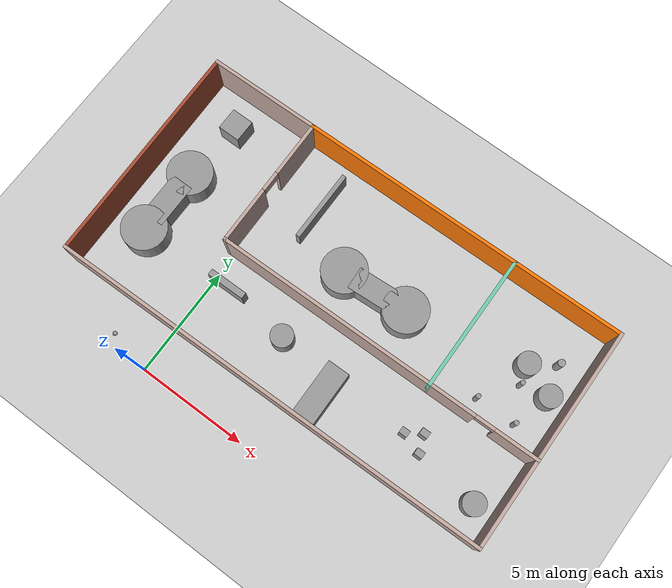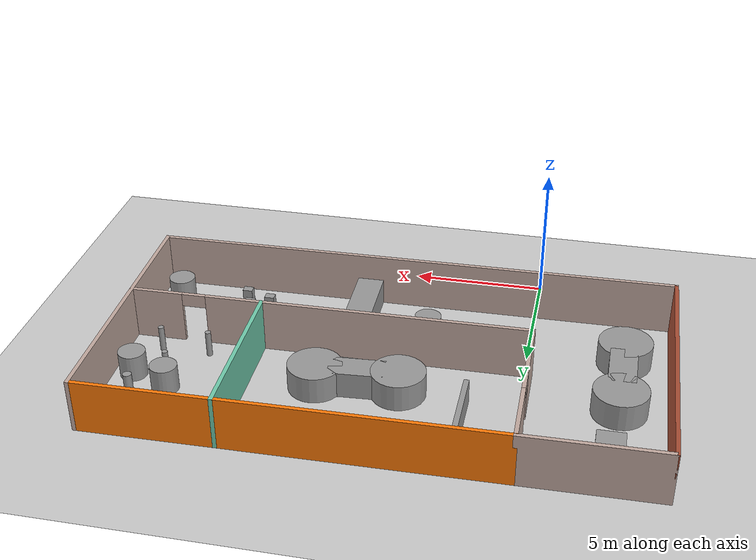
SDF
<sdf version="1.6">
 <world name="default">
  <plugin name="hello" filename="libhello.so"/>
  <light name="sun" type="directional">
   <pose>0 0 10 0 -0 0</pose>
   <diffuse>0.8 0.8 0.8 1</diffuse>
   <specular>0.2 0.2 0.2 1</specular>
   <attenuation>
    <range>1000</range>
    <constant>0.9</constant>
    <linear>0.01</linear>
    <quadratic>0.001</quadratic>
   </attenuation>
   <direction>-0.5 0.1 -0.9</direction>
  </light>
  <model name="ground_plane">
   <static>1</static>
   <link name="link">
    <collision name="collision">
     <geometry><plane><normal>0 0 1</normal><size>100 100</size></plane></geometry>
     <surface>
      <contact><collide_bitmask>65535</collide_bitmask></contact>
      <friction><ode><mu>100</mu><mu2>50</mu2></ode></friction>
     </surface>
    </collision>
    <visual name="visual">
     <cast_shadows>0</cast_shadows>
     <geometry><plane><normal>0 0 1</normal><size>100 100</size></plane></geometry>
     <material>
      <script><uri>file://media/materials/scripts/gazebo.material</uri><name>Gazebo/Grey</name></script>
     </material>
    </visual>
   </link>
  </model>
  <gravity>0 0 -9.8</gravity>
  <magnetic_field>6e-06 2.3e-05 -4.2e-05</magnetic_field>
  <atmosphere type="adiabatic"/>
  <physics name="default_physics" default="0" type="ode">
   <max_step_size>0.001</max_step_size>
   <real_time_factor>1</real_time_factor>
   <real_time_update_rate>1000</real_time_update_rate>
  </physics>
  <scene><ambient>0.4 0.4 0.4 1</ambient><background>0.7 0.7 0.7 1</background><shadows>1</shadows></scene>
  <spherical_coordinates>
   <surface_model>EARTH_WGS84</surface_model>
   <latitude_deg>0</latitude_deg>
   <longitude_deg>0</longitude_deg>
   <elevation>0</elevation>
   <heading_deg>0</heading_deg>
  </spherical_coordinates>
  <model name="house">
   <pose>4.73827 7.12037 -0.500011 0 -0 0.014937</pose>
   <link name="Wall_0">
    <collision name="Wall_0_Collision">
     <geometry><box><size>10.15 0.15 2.5</size></box></geometry>
     <pose>0 0 1.25 0 -0 0</pose>
    </collision>
    <visual name="Wall_0_Visual">
     <pose>0 0 1.25 0 -0 0</pose>
     <geometry><box><size>10.15 0.15 2.5</size></box></geometry>
     <material>
      <script><uri>file://media/materials/scripts/gazebo.material</uri><name>Gazebo/Bricks</name></script>
      <ambient>0.760784 0.662745 0.627451 1</ambient>
     </material>
     <meta><layer>0</layer></meta>
    </visual>
    <pose>-10 0 0 0 -0 1.5708</pose>
   </link>
   <link name="Wall_11">
    <collision name="Wall_11_Collision">
     <geometry><box><size>15 0.15 2.5</size></box></geometry>
     <pose>0 0 1.25 0 -0 0</pose>
    </collision>
    <visual name="Wall_11_Visual">
     <pose>0 0 1.25 0 -0 0</pose>
     <geometry><box><size>15 0.15 2.5</size></box></geometry>
     <material>
      <script><uri>file://media/materials/scripts/gazebo.material</uri><name>Gazebo/Grey</name></script>
      <ambient>0.996078 0.47451 0.0196078 1</ambient>
     </material>
     <meta><layer>0</layer></meta>
    </visual>
    <pose>2.425 5 0 0 -0 0</pose>
   </link>
   <link name="Wall_13">
    <collision name="Wall_13_Collision">
     <geometry><box><size>5.15 0.15 2.5</size></box></geometry>
     <pose>0 0 1.25 0 -0 0</pose>
    </collision>
    <visual name="Wall_13_Visual">
     <pose>0 0 1.25 0 -0 0</pose>
     <geometry><box><size>5.15 0.15 2.5</size></box></geometry>
     <material>
      <script><uri>file://media/materials/scripts/gazebo.material</uri><name>Gazebo/Grey</name></script>
      <ambient>0.760784 0.662745 0.627451 1</ambient>
     </material>
     <meta><layer>0</layer></meta>
    </visual>
    <pose>-7.5 5 0 0 -0 0</pose>
   </link>
   <link name="Wall_15">
    <collision name="Wall_15_Collision">
     <geometry><box><size>6.15 0.15 2.5</size></box></geometry>
     <pose>0 0 1.25 0 -0 0</pose>
    </collision>
    <visual name="Wall_15_Visual">
     <pose>0 0 1.25 0 -0 0</pose>
     <geometry><box><size>6.15 0.15 2.5</size></box></geometry>
     <material>
      <script><uri>file://media/materials/scripts/gazebo.material</uri><name>Gazebo/Grey</name></script>
      <ambient>0.435294 0.796078 0.67451 1</ambient>
     </material>
     <meta><layer>0</layer></meta>
    </visual>
    <pose>5 2 0 0 0 -1.5708</pose>
   </link>
   <link name="Wall_2">
    <collision name="Wall_2_Collision">
     <geometry><box><size>20.15 0.15 2.5</size></box></geometry>
     <pose>0 0 1.25 0 -0 0</pose>
    </collision>
    <visual name="Wall_2_Visual">
     <pose>0 0 1.25 0 -0 0</pose>
     <geometry><box><size>20.15 0.15 2.5</size></box></geometry>
     <material>
      <script><uri>file://media/materials/scripts/gazebo.material</uri><name>Gazebo/Grey</name></script>
      <ambient>0.760784 0.662745 0.627451 1</ambient>
     </material>
     <meta><layer>0</layer></meta>
    </visual>
    <pose>0 -5 0 0 -0 0</pose>
   </link>
   <link name="Wall_4">
    <collision name="Wall_4_Collision">
     <geometry><box><size>10.15 0.15 2.5</size></box></geometry>
     <pose>0 0 1.25 0 -0 0</pose>
    </collision>
    <visual name="Wall_4_Visual">
     <pose>0 0 1.25 0 -0 0</pose>
     <geometry><box><size>10.15 0.15 2.5</size></box></geometry>
     <material>
      <script><uri>file://media/materials/scripts/gazebo.material</uri><name>Gazebo/Grey</name></script>
      <ambient>0.760784 0.662745 0.627451 1</ambient>
     </material>
     <meta><layer>0</layer></meta>
    </visual>
    <pose>10 0 0 0 -0 1.5708</pose>
   </link>
   <link name="Wall_6">
    <pose>2.5 -1 0 0 -0 0</pose>
    <visual name="Wall_6_Visual_0">
     <pose>-1.47053 0 1.25 0 -0 0</pose>
     <geometry><box><size>12.2089 0.15 2.5</size></box></geometry>
     <material>
      <script><uri>file://media/materials/scripts/gazebo.material</uri><name>Gazebo/Grey</name></script>
      <ambient>0.760784 0.662745 0.627451 1</ambient>
     </material>
     <meta><layer>0</layer></meta>
    </visual>
    <collision name="Wall_6_Collision_0">
     <geometry><box><size>12.2089 0.15 2.5</size></box></geometry>
     <pose>-1.47053 0 1.25 0 -0 0</pose>
    </collision>
    <visual name="Wall_6_Visual_1">
     <pose>6.55447 0 1.25 0 -0 0</pose>
     <geometry><box><size>2.04107 0.15 2.5</size></box></geometry>
     <material>
      <script><uri>file://media/materials/scripts/gazebo.material</uri><name>Gazebo/Grey</name></script>
      <ambient>0.760784 0.662745 0.627451 1</ambient>
     </material>
     <meta><layer>0</layer></meta>
    </visual>
    <collision name="Wall_6_Collision_1">
     <geometry><box><size>2.04107 0.15 2.5</size></box></geometry>
     <pose>6.55447 0 1.25 0 -0 0</pose>
    </collision>
    <visual name="Wall_6_Visual_2">
     <pose>5.08393 0 2.25 0 -0 0</pose>
     <geometry><box><size>0.9 0.15 0.5</size></box></geometry>
     <material>
      <script><uri>file://media/materials/scripts/gazebo.material</uri><name>Gazebo/Grey</name></script>
      <ambient>0.760784 0.662745 0.627451 1</ambient>
     </material>
     <meta><layer>0</layer></meta>
    </visual>
    <collision name="Wall_6_Collision_2">
     <geometry><box><size>0.9 0.15 0.5</size></box></geometry>
     <pose>5.08393 0 2.25 0 -0 0</pose>
    </collision>
   </link>
   <link name="Wall_8">
    <pose>-5 2 0 0 -0 1.5708</pose>
    <visual name="Wall_8_Visual_0">
     <pose>-1.7494 0 1.25 0 -0 0</pose>
     <geometry><box><size>2.65121 0.15 2.5</size></box></geometry>
     <material>
      <script><uri>file://media/materials/scripts/gazebo.material</uri><name>Gazebo/Grey</name></script>
      <ambient>0.760784 0.662745 0.627451 1</ambient>
     </material>
     <meta><layer>0</layer></meta>
    </visual>
    <collision name="Wall_8_Collision_0">
     <geometry><box><size>2.65121 0.15 2.5</size></box></geometry>
     <pose>-1.7494 0 1.25 0 -0 0</pose>
    </collision>
    <visual name="Wall_8_Visual_1">
     <pose>1.7756 0 1.25 0 -0 0</pose>
     <geometry><box><size>2.59879 0.15 2.5</size></box></geometry>
     <material>
      <script><uri>file://media/materials/scripts/gazebo.material</uri><name>Gazebo/Grey</name></script>
      <ambient>0.760784 0.662745 0.627451 1</ambient>
     </material>
     <meta><layer>0</layer></meta>
    </visual>
    <collision name="Wall_8_Collision_1">
     <geometry><box><size>2.59879 0.15 2.5</size></box></geometry>
     <pose>1.7756 0 1.25 0 -0 0</pose>
    </collision>
    <visual name="Wall_8_Visual_2">
     <pose>0.026206 0 2.25 0 -0 0</pose>
     <geometry><box><size>0.9 0.15 0.5</size></box></geometry>
     <material>
      <script><uri>file://media/materials/scripts/gazebo.material</uri><name>Gazebo/Grey</name></script>
      <ambient>0.760784 0.662745 0.627451 1</ambient>
     </material>
     <meta><layer>0</layer></meta>
    </visual>
    <collision name="Wall_8_Collision_2">
     <geometry><box><size>0.9 0.15 0.5</size></box></geometry>
     <pose>0.026206 0 2.25 0 -0 0</pose>
    </collision>
   </link>
   <static>1</static>
  </model>
  <model name="dogboneTable">
   <link name="link_0">
    <pose>0.0299 2.5 0 0 -0 0</pose>
    <inertial>
     <mass>1</mass>
     <inertia><ixx>0.145833</ixx><ixy>0</ixy><ixz>0</ixz><iyy>0.145833</iyy><iyz>0</iyz><izz>0.125</izz></inertia>
    </inertial>
    <visual name="visual">
     <geometry><cylinder><radius>1</radius><length>1</length></cylinder></geometry>
     <material>
      <lighting>1</lighting>
      <script><uri>file://media/materials/scripts/gazebo.material</uri><name>Gazebo/Grey</name></script>
      <shader type="pixel"><normal_map>__default__</normal_map></shader>
      <ambient>0.3 0.3 0.3 1</ambient>
      <diffuse>0.7 0.7 0.7 1</diffuse>
      <specular>0.01 0.01 0.01 1</specular>
      <emissive>0 0 0 1</emissive>
     </material>
    </visual>
    <collision name="collision">
     <geometry><cylinder><radius>1</radius><length>1</length></cylinder></geometry>
     <surface>
      <friction>
       <ode><mu>1</mu><mu2>1</mu2><fdir1>0 0 0</fdir1><slip1>0</slip1><slip2>0</slip2></ode>
       <torsional>
        <coefficient>1</coefficient>
        <patch_radius>0</patch_radius>
        <surface_radius>0</surface_radius>
        <use_patch_radius>1</use_patch_radius>
        <ode><slip>0</slip></ode>
       </torsional>
      </friction>
      <bounce><restitution_coefficient>0</restitution_coefficient><threshold>1e+06</threshold></bounce>
      <contact>
       <collide_without_contact>0</collide_without_contact>
       <collide_without_contact_bitmask>1</collide_without_contact_bitmask>
       <collide_bitmask>1</collide_bitmask>
       <ode>
        <soft_cfm>0</soft_cfm>
        <soft_erp>0.2</soft_erp>
        <kp>1e+13</kp>
        <kd>1</kd>
        <max_vel>0.01</max_vel>
        <min_depth>0</min_depth>
       </ode>
       <bullet>
        <split_impulse>1</split_impulse>
        <split_impulse_penetration_threshold>-0.01</split_impulse_penetration_threshold>
        <soft_cfm>0</soft_cfm>
        <soft_erp>0.2</soft_erp>
        <kp>1e+13</kp>
        <kd>1</kd>
       </bullet>
      </contact>
     </surface>
    </collision>
   </link>
   <link name="link_0_clone">
    <pose>0 -0.5 0 0 -0 0</pose>
    <inertial>
     <mass>1</mass>
     <inertia><ixx>0.145833</ixx><ixy>0</ixy><ixz>0</ixz><iyy>0.145833</iyy><iyz>0</iyz><izz>0.125</izz></inertia>
    </inertial>
    <visual name="visual">
     <geometry><cylinder><radius>1</radius><length>1</length></cylinder></geometry>
     <material>
      <lighting>1</lighting>
      <script><uri>file://media/materials/scripts/gazebo.material</uri><name>Gazebo/Grey</name></script>
      <shader type="pixel"><normal_map>__default__</normal_map></shader>
      <ambient>0.3 0.3 0.3 1</ambient>
      <diffuse>0.7 0.7 0.7 1</diffuse>
      <specular>0.01 0.01 0.01 1</specular>
      <emissive>0 0 0 1</emissive>
     </material>
    </visual>
    <collision name="collision">
     <geometry><cylinder><radius>1</radius><length>1</length></cylinder></geometry>
     <surface>
      <friction>
       <ode><mu>1</mu><mu2>1</mu2><fdir1>0 0 0</fdir1><slip1>0</slip1><slip2>0</slip2></ode>
       <torsional>
        <coefficient>1</coefficient>
        <patch_radius>0</patch_radius>
        <surface_radius>0</surface_radius>
        <use_patch_radius>1</use_patch_radius>
        <ode><slip>0</slip></ode>
       </torsional>
      </friction>
      <bounce><restitution_coefficient>0</restitution_coefficient><threshold>1e+06</threshold></bounce>
      <contact>
       <collide_without_contact>0</collide_without_contact>
       <collide_without_contact_bitmask>1</collide_without_contact_bitmask>
       <collide_bitmask>1</collide_bitmask>
       <ode>
        <soft_cfm>0</soft_cfm>
        <soft_erp>0.2</soft_erp>
        <kp>1e+13</kp>
        <kd>1</kd>
        <max_vel>0.01</max_vel>
        <min_depth>0</min_depth>
       </ode>
       <bullet>
        <split_impulse>1</split_impulse>
        <split_impulse_penetration_threshold>-0.01</split_impulse_penetration_threshold>
        <soft_cfm>0</soft_cfm>
        <soft_erp>0.2</soft_erp>
        <kp>1e+13</kp>
        <kd>1</kd>
       </bullet>
      </contact>
     </surface>
    </collision>
   </link>
   <link name="link_1">
    <pose>0.0299 1 0 0 -0 0</pose>
    <inertial>
     <mass>1</mass>
     <inertia>
      <ixx>0.166667</ixx>
      <ixy>0</ixy>
      <ixz>0</ixz>
      <iyy>0.166667</iyy>
      <iyz>0</iyz>
      <izz>0.166667</izz>
     </inertia>
    </inertial>
    <visual name="visual">
     <geometry><box><size>1 2 1</size></box></geometry>
     <material>
      <lighting>1</lighting>
      <script><uri>file://media/materials/scripts/gazebo.material</uri><name>Gazebo/Grey</name></script>
      <shader type="pixel"><normal_map>__default__</normal_map></shader>
      <ambient>0.3 0.3 0.3 1</ambient>
      <diffuse>0.7 0.7 0.7 1</diffuse>
      <specular>0.01 0.01 0.01 1</specular>
      <emissive>0 0 0 1</emissive>
     </material>
    </visual>
    <collision name="collision">
     <geometry><box><size>1 2 1</size></box></geometry>
     <surface>
      <friction>
       <ode><mu>1</mu><mu2>1</mu2><fdir1>0 0 0</fdir1><slip1>0</slip1><slip2>0</slip2></ode>
       <torsional>
        <coefficient>1</coefficient>
        <patch_radius>0</patch_radius>
        <surface_radius>0</surface_radius>
        <use_patch_radius>1</use_patch_radius>
        <ode><slip>0</slip></ode>
       </torsional>
      </friction>
      <bounce><restitution_coefficient>0</restitution_coefficient><threshold>1e+06</threshold></bounce>
      <contact>
       <collide_without_contact>0</collide_without_contact>
       <collide_without_contact_bitmask>1</collide_without_contact_bitmask>
       <collide_bitmask>1</collide_bitmask>
       <ode>
        <soft_cfm>0</soft_cfm>
        <soft_erp>0.2</soft_erp>
        <kp>1e+13</kp>
        <kd>1</kd>
        <max_vel>0.01</max_vel>
        <min_depth>0</min_depth>
       </ode>
       <bullet>
        <split_impulse>1</split_impulse>
        <split_impulse_penetration_threshold>-0.01</split_impulse_penetration_threshold>
        <soft_cfm>0</soft_cfm>
        <soft_erp>0.2</soft_erp>
        <kp>1e+13</kp>
        <kd>1</kd>
       </bullet>
      </contact>
     </surface>
    </collision>
   </link>
   <joint name="link_1_JOINT_0" type="fixed">
    <parent>link_1</parent>
    <child>link_0</child>
    <physics>
     <ode><limit><cfm>0</cfm><erp>0.2</erp></limit><suspension><cfm>0</cfm><erp>0.2</erp></suspension></ode>
    </physics>
   </joint>
   <joint name="link_1_JOINT_1" type="fixed">
    <parent>link_0</parent>
    <child>link_0_clone</child>
    <physics>
     <ode><limit><cfm>0</cfm><erp>0.2</erp></limit><suspension><cfm>0</cfm><erp>0.2</erp></suspension></ode>
    </physics>
   </joint>
   <static>0</static>
   <pose>-3.53305 5.10041 0.499999 1e-06 -1e-06 0.004234</pose>
  </model>
  <model name="dogboneTable_clone">
   <link name="link_0">
    <pose>0.0299 2.5 0 0 -0 0</pose>
    <inertial>
     <mass>1</mass>
     <inertia><ixx>0.145833</ixx><ixy>0</ixy><ixz>0</ixz><iyy>0.145833</iyy><iyz>0</iyz><izz>0.125</izz></inertia>
    </inertial>
    <visual name="visual">
     <geometry><cylinder><radius>1</radius><length>1</length></cylinder></geometry>
     <material>
      <lighting>1</lighting>
      <script><uri>file://media/materials/scripts/gazebo.material</uri><name>Gazebo/Grey</name></script>
      <shader type="pixel"><normal_map>__default__</normal_map></shader>
      <ambient>0.3 0.3 0.3 1</ambient>
      <diffuse>0.7 0.7 0.7 1</diffuse>
      <specular>0.01 0.01 0.01 1</specular>
      <emissive>0 0 0 1</emissive>
     </material>
    </visual>
    <collision name="collision">
     <geometry><cylinder><radius>1</radius><length>1</length></cylinder></geometry>
     <surface>
      <friction>
       <ode><mu>1</mu><mu2>1</mu2><fdir1>0 0 0</fdir1><slip1>0</slip1><slip2>0</slip2></ode>
       <torsional>
        <coefficient>1</coefficient>
        <patch_radius>0</patch_radius>
        <surface_radius>0</surface_radius>
        <use_patch_radius>1</use_patch_radius>
        <ode><slip>0</slip></ode>
       </torsional>
      </friction>
      <bounce><restitution_coefficient>0</restitution_coefficient><threshold>1e+06</threshold></bounce>
      <contact>
       <collide_without_contact>0</collide_without_contact>
       <collide_without_contact_bitmask>1</collide_without_contact_bitmask>
       <collide_bitmask>1</collide_bitmask>
       <ode>
        <soft_cfm>0</soft_cfm>
        <soft_erp>0.2</soft_erp>
        <kp>1e+13</kp>
        <kd>1</kd>
        <max_vel>0.01</max_vel>
        <min_depth>0</min_depth>
       </ode>
       <bullet>
        <split_impulse>1</split_impulse>
        <split_impulse_penetration_threshold>-0.01</split_impulse_penetration_threshold>
        <soft_cfm>0</soft_cfm>
        <soft_erp>0.2</soft_erp>
        <kp>1e+13</kp>
        <kd>1</kd>
       </bullet>
      </contact>
     </surface>
    </collision>
   </link>
   <link name="link_0_clone">
    <pose>0 -0.5 0 0 -0 0</pose>
    <inertial>
     <mass>1</mass>
     <inertia><ixx>0.145833</ixx><ixy>0</ixy><ixz>0</ixz><iyy>0.145833</iyy><iyz>0</iyz><izz>0.125</izz></inertia>
    </inertial>
    <visual name="visual">
     <geometry><cylinder><radius>1</radius><length>1</length></cylinder></geometry>
     <material>
      <lighting>1</lighting>
      <script><uri>file://media/materials/scripts/gazebo.material</uri><name>Gazebo/Grey</name></script>
      <shader type="pixel"><normal_map>__default__</normal_map></shader>
      <ambient>0.3 0.3 0.3 1</ambient>
      <diffuse>0.7 0.7 0.7 1</diffuse>
      <specular>0.01 0.01 0.01 1</specular>
      <emissive>0 0 0 1</emissive>
     </material>
    </visual>
    <collision name="collision">
     <geometry><cylinder><radius>1</radius><length>1</length></cylinder></geometry>
     <surface>
      <friction>
       <ode><mu>1</mu><mu2>1</mu2><fdir1>0 0 0</fdir1><slip1>0</slip1><slip2>0</slip2></ode>
       <torsional>
        <coefficient>1</coefficient>
        <patch_radius>0</patch_radius>
        <surface_radius>0</surface_radius>
        <use_patch_radius>1</use_patch_radius>
        <ode><slip>0</slip></ode>
       </torsional>
      </friction>
      <bounce><restitution_coefficient>0</restitution_coefficient><threshold>1e+06</threshold></bounce>
      <contact>
       <collide_without_contact>0</collide_without_contact>
       <collide_without_contact_bitmask>1</collide_without_contact_bitmask>
       <collide_bitmask>1</collide_bitmask>
       <ode>
        <soft_cfm>0</soft_cfm>
        <soft_erp>0.2</soft_erp>
        <kp>1e+13</kp>
        <kd>1</kd>
        <max_vel>0.01</max_vel>
        <min_depth>0</min_depth>
       </ode>
       <bullet>
        <split_impulse>1</split_impulse>
        <split_impulse_penetration_threshold>-0.01</split_impulse_penetration_threshold>
        <soft_cfm>0</soft_cfm>
        <soft_erp>0.2</soft_erp>
        <kp>1e+13</kp>
        <kd>1</kd>
       </bullet>
      </contact>
     </surface>
    </collision>
   </link>
   <link name="link_1">
    <pose>0.0299 1 0 0 -0 0</pose>
    <inertial>
     <mass>1</mass>
     <inertia>
      <ixx>0.166667</ixx>
      <ixy>0</ixy>
      <ixz>0</ixz>
      <iyy>0.166667</iyy>
      <iyz>0</iyz>
      <izz>0.166667</izz>
     </inertia>
    </inertial>
    <visual name="visual">
     <geometry><box><size>1 2 1</size></box></geometry>
     <material>
      <lighting>1</lighting>
      <script><uri>file://media/materials/scripts/gazebo.material</uri><name>Gazebo/Grey</name></script>
      <shader type="pixel"><normal_map>__default__</normal_map></shader>
      <ambient>0.3 0.3 0.3 1</ambient>
      <diffuse>0.7 0.7 0.7 1</diffuse>
      <specular>0.01 0.01 0.01 1</specular>
      <emissive>0 0 0 1</emissive>
     </material>
    </visual>
    <collision name="collision">
     <geometry><box><size>1 2 1</size></box></geometry>
     <surface>
      <friction>
       <ode><mu>1</mu><mu2>1</mu2><fdir1>0 0 0</fdir1><slip1>0</slip1><slip2>0</slip2></ode>
       <torsional>
        <coefficient>1</coefficient>
        <patch_radius>0</patch_radius>
        <surface_radius>0</surface_radius>
        <use_patch_radius>1</use_patch_radius>
        <ode><slip>0</slip></ode>
       </torsional>
      </friction>
      <bounce><restitution_coefficient>0</restitution_coefficient><threshold>1e+06</threshold></bounce>
      <contact>
       <collide_without_contact>0</collide_without_contact>
       <collide_without_contact_bitmask>1</collide_without_contact_bitmask>
       <collide_bitmask>1</collide_bitmask>
       <ode>
        <soft_cfm>0</soft_cfm>
        <soft_erp>0.2</soft_erp>
        <kp>1e+13</kp>
        <kd>1</kd>
        <max_vel>0.01</max_vel>
        <min_depth>0</min_depth>
       </ode>
       <bullet>
        <split_impulse>1</split_impulse>
        <split_impulse_penetration_threshold>-0.01</split_impulse_penetration_threshold>
        <soft_cfm>0</soft_cfm>
        <soft_erp>0.2</soft_erp>
        <kp>1e+13</kp>
        <kd>1</kd>
       </bullet>
      </contact>
     </surface>
    </collision>
   </link>
   <joint name="link_1_JOINT_0" type="fixed">
    <parent>link_1</parent>
    <child>link_0</child>
    <physics>
     <ode><limit><cfm>0</cfm><erp>0.2</erp></limit><suspension><cfm>0</cfm><erp>0.2</erp></suspension></ode>
    </physics>
   </joint>
   <joint name="link_1_JOINT_1" type="fixed">
    <parent>link_0</parent>
    <child>link_0_clone</child>
    <physics>
     <ode><limit><cfm>0</cfm><erp>0.2</erp></limit><suspension><cfm>0</cfm><erp>0.2</erp></suspension></ode>
    </physics>
   </joint>
   <static>0</static>
   <pose>4.72633 8.1062 0.500002 -1e-06 -0 -1.50698</pose>
  </model>
  <model name="my_ball">
   <link name="link_0">
    <inertial>
     <mass>1</mass>
     <inertia><ixx>0.1</ixx><ixy>0</ixy><ixz>0</ixz><iyy>0.1</iyy><iyz>0</iyz><izz>0.1</izz></inertia>
    </inertial>
    <visual name="visual">
     <geometry><sphere><radius>0.1</radius></sphere></geometry>
     <material>
      <lighting>1</lighting>
      <script><uri>file://media/materials/scripts/gazebo.material</uri><name>Gazebo/Grey</name></script>
      <shader type="pixel"><normal_map>__default__</normal_map></shader>
      <ambient>1 1 1 1</ambient>
      <diffuse>1 1 1 1</diffuse>
      <specular>1 1 1 1</specular>
      <emissive>1 1 1 1</emissive>
     </material>
    </visual>
    <collision name="collision">
     <geometry><sphere><radius>0.1</radius></sphere></geometry>
     <surface>
      <friction>
       <ode><mu>1</mu><mu2>1</mu2><fdir1>0 0 0</fdir1><slip1>0</slip1><slip2>0</slip2></ode>
       <torsional>
        <coefficient>1</coefficient>
        <patch_radius>0</patch_radius>
        <surface_radius>0</surface_radius>
        <use_patch_radius>1</use_patch_radius>
        <ode><slip>0</slip></ode>
       </torsional>
      </friction>
      <bounce><restitution_coefficient>0</restitution_coefficient><threshold>1e+06</threshold></bounce>
      <contact>
       <collide_without_contact>0</collide_without_contact>
       <collide_without_contact_bitmask>1</collide_without_contact_bitmask>
       <collide_bitmask>1</collide_bitmask>
       <ode>
        <soft_cfm>0</soft_cfm>
        <soft_erp>0.2</soft_erp>
        <kp>1e+13</kp>
        <kd>1</kd>
        <max_vel>0.01</max_vel>
        <min_depth>0</min_depth>
       </ode>
       <bullet>
        <split_impulse>1</split_impulse>
        <split_impulse_penetration_threshold>-0.01</split_impulse_penetration_threshold>
        <soft_cfm>0</soft_cfm>
        <soft_erp>0.2</soft_erp>
        <kp>1e+13</kp>
        <kd>1</kd>
       </bullet>
      </contact>
     </surface>
    </collision>
   </link>
   <static>0</static>
   <pose>-1.904 0.447137 0.1 0 -0 0</pose>
  </model>
  <model name="unit_box">
   <pose>6.47397 3.47179 0.499996 -9e-06 -0 -1.55591</pose>
   <link name="link">
    <inertial>
     <mass>1</mass>
     <inertia>
      <ixx>0.166667</ixx>
      <ixy>0</ixy>
      <ixz>0</ixz>
      <iyy>0.166667</iyy>
      <iyz>0</iyz>
      <izz>0.166667</izz>
     </inertia>
    </inertial>
    <collision name="collision"><geometry><box><size>2.5017 1 1</size></box></geometry></collision>
    <visual name="visual">
     <geometry><box><size>2.5017 1 1</size></box></geometry>
     <material>
      <script><name>Gazebo/Grey</name><uri>file://media/materials/scripts/gazebo.material</uri></script>
     </material>
    </visual>
   </link>
  </model>
  <model name="unit_cylinder">
   <pose>3.83073 4.38439 0.499991 0 -0 0</pose>
   <link name="link">
    <inertial>
     <mass>1</mass>
     <inertia><ixx>0.145833</ixx><ixy>0</ixy><ixz>0</ixz><iyy>0.145833</iyy><iyz>0</iyz><izz>0.125</izz></inertia>
    </inertial>
    <collision name="collision">
     <geometry><cylinder><radius>0.5</radius><length>1</length></cylinder></geometry>
    </collision>
    <visual name="visual">
     <geometry><cylinder><radius>0.5</radius><length>1</length></cylinder></geometry>
     <material>
      <script><name>Gazebo/Grey</name><uri>file://media/materials/scripts/gazebo.material</uri></script>
     </material>
    </visual>
   </link>
  </model>
  <model name="unit_box_1">
   <pose>10.7233 4.65301 0.499999 2e-06 -3e-06 8.1e-05</pose>
   <link name="link">
    <inertial>
     <mass>1</mass>
     <inertia>
      <ixx>0.166667</ixx>
      <ixy>0</ixy>
      <ixz>0</ixz>
      <iyy>0.166667</iyy>
      <iyz>0</iyz>
      <izz>0.166667</izz>
     </inertia>
    </inertial>
    <collision name="collision"><geometry><box><size>0.367276 0.295236 1</size></box></geometry></collision>
    <visual name="visual">
     <geometry><box><size>0.367276 0.295236 1</size></box></geometry>
     <material>
      <script><name>Gazebo/Grey</name><uri>file://media/materials/scripts/gazebo.material</uri></script>
     </material>
    </visual>
   </link>
  </model>
  <model name="unit_cylinder_0">
   <pose>13.8372 3.58219 0.499994 -3e-06 -1e-06 -0</pose>
   <link name="link">
    <inertial>
     <mass>1</mass>
     <inertia><ixx>0.145833</ixx><ixy>0</ixy><ixz>0</ixz><iyy>0.145833</iyy><iyz>0</iyz><izz>0.125</izz></inertia>
    </inertial>
    <collision name="collision">
     <geometry><cylinder><radius>0.5</radius><length>1</length></cylinder></geometry>
    </collision>
    <visual name="visual">
     <geometry><cylinder><radius>0.5</radius><length>1</length></cylinder></geometry>
     <material>
      <script><name>Gazebo/Grey</name><uri>file://media/materials/scripts/gazebo.material</uri></script>
     </material>
    </visual>
   </link>
  </model>
  <model name="unit_box_2">
   <pose>0.71478 4.75864 0.499995 -0 -5e-06 0.01007</pose>
   <link name="link">
    <inertial>
     <mass>1</mass>
     <inertia>
      <ixx>0.166667</ixx>
      <ixy>0</ixy>
      <ixz>0</ixz>
      <iyy>0.166667</iyy>
      <iyz>0</iyz>
      <izz>0.166667</izz>
     </inertia>
    </inertial>
    <collision name="collision"><geometry><box><size>1.73747 0.286894 1</size></box></geometry></collision>
    <visual name="visual">
     <geometry><box><size>1.73747 0.286894 1</size></box></geometry>
     <material>
      <script><name>Gazebo/Grey</name><uri>file://media/materials/scripts/gazebo.material</uri></script>
     </material>
    </visual>
   </link>
  </model>
  <model name="unit_box_3">
   <pose>-3.30606 10.4608 0.499995 0 1e-05 0</pose>
   <link name="link">
    <inertial>
     <mass>1</mass>
     <inertia>
      <ixx>0.166667</ixx>
      <ixy>0</ixy>
      <ixz>0</ixz>
      <iyy>0.166667</iyy>
      <iyz>0</iyz>
      <izz>0.166667</izz>
     </inertia>
    </inertial>
    <collision name="collision"><geometry><box><size>1 1 1</size></box></geometry></collision>
    <visual name="visual">
     <geometry><box><size>1 1 1</size></box></geometry>
     <material>
      <script><name>Gazebo/Grey</name><uri>file://media/materials/scripts/gazebo.material</uri></script>
     </material>
    </visual>
   </link>
  </model>
  <model name="unit_box_4">
   <pose>1.78774 9.73332 0.49973 -0.000166 6e-06 0.004531</pose>
   <link name="link">
    <inertial>
     <mass>1</mass>
     <inertia>
      <ixx>0.166667</ixx>
      <ixy>0</ixy>
      <ixz>0</ixz>
      <iyy>0.166667</iyy>
      <iyz>0</iyz>
      <izz>0.166667</izz>
     </inertia>
    </inertial>
    <collision name="collision"><geometry><box><size>0.196407 3.26368 1</size></box></geometry></collision>
    <visual name="visual">
     <geometry><box><size>0.196407 3.26368 1</size></box></geometry>
     <material>
      <script><name>Gazebo/Grey</name><uri>file://media/materials/scripts/gazebo.material</uri></script>
     </material>
    </visual>
   </link>
  </model>
  <model name="unit_box_1_clone">
   <pose>11.0154 3.89021 0.5 -2e-06 1e-06 0.000229</pose>
   <link name="link">
    <inertial>
     <mass>1</mass>
     <inertia>
      <ixx>0.166667</ixx>
      <ixy>0</ixy>
      <ixz>0</ixz>
      <iyy>0.166667</iyy>
      <iyz>0</iyz>
      <izz>0.166667</izz>
     </inertia>
    </inertial>
    <collision name="collision"><geometry><box><size>0.367276 0.295236 1</size></box></geometry></collision>
    <visual name="visual">
     <geometry><box><size>0.367276 0.295236 1</size></box></geometry>
     <material>
      <script><name>Gazebo/Grey</name><uri>file://media/materials/scripts/gazebo.material</uri></script>
     </material>
    </visual>
   </link>
  </model>
  <model name="unit_box_1_clone_0">
   <pose>10.0507 4.21433 0.499999 -2e-06 -3e-06 -0.000137</pose>
   <link name="link">
    <inertial>
     <mass>1</mass>
     <inertia>
      <ixx>0.166667</ixx>
      <ixy>0</ixy>
      <ixz>0</ixz>
      <iyy>0.166667</iyy>
      <iyz>0</iyz>
      <izz>0.166667</izz>
     </inertia>
    </inertial>
    <collision name="collision"><geometry><box><size>0.367276 0.295236 1</size></box></geometry></collision>
    <visual name="visual">
     <geometry><box><size>0.367276 0.295236 1</size></box></geometry>
     <material>
      <script><name>Gazebo/Grey</name><uri>file://media/materials/scripts/gazebo.material</uri></script>
     </material>
    </visual>
   </link>
  </model>
  <model name="unit_cylinder_1">
   <pose>13.4981 10.1864 0.499991 0 -0 4e-06</pose>
   <link name="link">
    <inertial>
     <mass>1</mass>
     <inertia><ixx>0.145833</ixx><ixy>0</ixy><ixz>0</ixz><iyy>0.145833</iyy><iyz>0</iyz><izz>0.125</izz></inertia>
    </inertial>
    <collision name="collision">
     <geometry><cylinder><radius>0.157585</radius><length>1</length></cylinder></geometry>
    </collision>
    <visual name="visual">
     <geometry><cylinder><radius>0.157585</radius><length>1</length></cylinder></geometry>
     <material>
      <script><name>Gazebo/Grey</name><uri>file://media/materials/scripts/gazebo.material</uri></script>
     </material>
    </visual>
   </link>
  </model>
  <model name="unit_cylinder_2">
   <pose>13.8782 8.81965 0.499992 -2e-06 2e-06 -0</pose>
   <link name="link">
    <inertial>
     <mass>1</mass>
     <inertia><ixx>0.145833</ixx><ixy>0</ixy><ixz>0</ixz><iyy>0.145833</iyy><iyz>0</iyz><izz>0.125</izz></inertia>
    </inertial>
    <collision name="collision">
     <geometry><cylinder><radius>0.5</radius><length>1</length></cylinder></geometry>
    </collision>
    <visual name="visual">
     <geometry><cylinder><radius>0.5</radius><length>1</length></cylinder></geometry>
     <material>
      <script><name>Gazebo/Grey</name><uri>file://media/materials/scripts/gazebo.material</uri></script>
     </material>
    </visual>
   </link>
  </model>
  <model name="unit_cylinder_3">
   <pose>12.4567 9.4113 0.499998 3e-06 -4e-06 0</pose>
   <link name="link">
    <inertial>
     <mass>1</mass>
     <inertia><ixx>0.145833</ixx><ixy>0</ixy><ixz>0</ixz><iyy>0.145833</iyy><iyz>0</iyz><izz>0.125</izz></inertia>
    </inertial>
    <collision name="collision">
     <geometry><cylinder><radius>0.5</radius><length>1</length></cylinder></geometry>
    </collision>
    <visual name="visual">
     <geometry><cylinder><radius>0.5</radius><length>1</length></cylinder></geometry>
     <material>
      <script><name>Gazebo/Grey</name><uri>file://media/materials/scripts/gazebo.material</uri></script>
     </material>
    </visual>
   </link>
  </model>
  <model name="unit_cylinder_3_clone">
   <pose>11.5782 7.10981 0.499997 0 0 -3.4e-05</pose>
   <link name="link">
    <inertial>
     <mass>1</mass>
     <inertia><ixx>0.145833</ixx><ixy>0</ixy><ixz>0</ixz><iyy>0.145833</iyy><iyz>0</iyz><izz>0.125</izz></inertia>
    </inertial>
    <collision name="collision">
     <geometry><cylinder><radius>0.106461</radius><length>1</length></cylinder></geometry>
    </collision>
    <visual name="visual">
     <geometry><cylinder><radius>0.106461</radius><length>1</length></cylinder></geometry>
     <material>
      <script><name>Gazebo/Grey</name><uri>file://media/materials/scripts/gazebo.material</uri></script>
     </material>
    </visual>
   </link>
  </model>
  <model name="unit_cylinder_3_clone_0">
   <pose>13.3859 7.13606 0.499993 0 0 -3.5e-05</pose>
   <link name="link">
    <inertial>
     <mass>1</mass>
     <inertia><ixx>0.145833</ixx><ixy>0</ixy><ixz>0</ixz><iyy>0.145833</iyy><iyz>0</iyz><izz>0.125</izz></inertia>
    </inertial>
    <collision name="collision">
     <geometry><cylinder><radius>0.106461</radius><length>1</length></cylinder></geometry>
    </collision>
    <visual name="visual">
     <geometry><cylinder><radius>0.106461</radius><length>1</length></cylinder></geometry>
     <material>
      <script><name>Gazebo/Grey</name><uri>file://media/materials/scripts/gazebo.material</uri></script>
     </material>
    </visual>
   </link>
  </model>
  <model name="unit_cylinder_3_clone_1">
   <pose>12.6942 8.60905 0.499997 0 0 -2e-05</pose>
   <link name="link">
    <inertial>
     <mass>1</mass>
     <inertia><ixx>0.145833</ixx><ixy>0</ixy><ixz>0</ixz><iyy>0.145833</iyy><iyz>0</iyz><izz>0.125</izz></inertia>
    </inertial>
    <collision name="collision">
     <geometry><cylinder><radius>0.106461</radius><length>1</length></cylinder></geometry>
    </collision>
    <visual name="visual">
     <geometry><cylinder><radius>0.106461</radius><length>1</length></cylinder></geometry>
     <material>
      <script><name>Gazebo/Grey</name><uri>file://media/materials/scripts/gazebo.material</uri></script>
     </material>
    </visual>
   </link>
  </model>
 </world>
</sdf>
